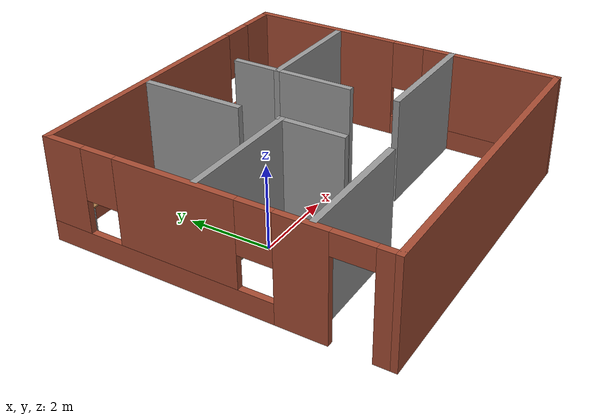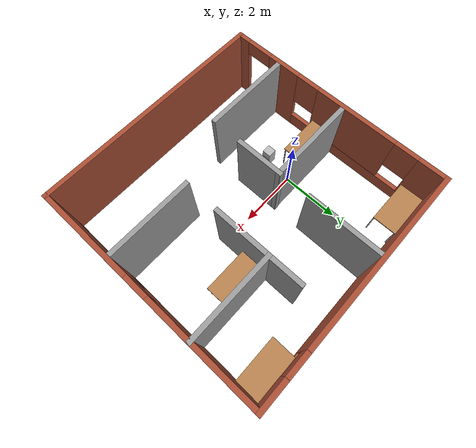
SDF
<?xml version="1.0" ?>
<sdf version="1.10">
    <world name="aruco_world">
        <physics name="1ms" type="ignored">
            <max_step_size>0.001</max_step_size>
            <real_time_factor>1.0</real_time_factor>
        </physics>
        <plugin
            filename="gz-sim-physics-system"
            name="gz::sim::systems::Physics">
        </plugin>
        <plugin
            filename="gz-sim-user-commands-system"
            name="gz::sim::systems::UserCommands">
        </plugin>
        <plugin
            filename="gz-sim-scene-broadcaster-system"
            name="gz::sim::systems::SceneBroadcaster">
        </plugin>

        <plugin
            filename="gz-sim-sensors-system"
            name="gz::sim::systems::Sensors">
            <render_engine>ogre2</render_engine>
        </plugin>

        <light type="directional" name="sun">
            <cast_shadows>false</cast_shadows>
            <pose>0 0 10 0 0 0</pose>
            <diffuse>0.8 0.8 0.8 1</diffuse>
            <specular>0.2 0.2 0.2 1</specular>
            <attenuation>
                <range>1000</range>
                <constant>0.9</constant>
                <linear>0.01</linear>
                <quadratic>0.001</quadratic>
            </attenuation>
            <direction>-0.5 0.1 -0.9</direction>
        </light>

        <include>
            <uri>model://aruco000_cv</uri>
            <pose>3 1 0.25 0 0 0</pose>
        </include>
        <include>
            <uri>model://box_brick</uri>
            <name>brick1</name>
            <pose>3.15 1 0 0 0 0</pose>
        </include>

        <include>
            <uri>model://aruco001_cv</uri>
            <pose>0 -1 0.25 0 0 3.1415</pose>
        </include>
        <include>
            <uri>model://box_brick</uri>
            <name>brick2</name>
            <pose>-0.15 -1 0 0 0 0</pose>
        </include>

        <include>
            <uri>/world_wall/model.sdf</uri>
            <pose>2 0 0 0 0 0</pose>
        </include>

    </world>
</sdf>

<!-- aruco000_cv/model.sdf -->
<sdf version='1.4'>
    <model name='aruco000_cv'>
    <static>true</static>

        <link name='link0'>
            <pose>0 0 0 0 0 3.1415</pose>

            <visual name='visual'>
                <geometry>
                    <mesh>
                        <uri>./meshes/aruco000.dae</uri>
                    </mesh>
                </geometry>
            </visual>

            <collision name='collision'>
                <pose>0 0 0 0 0 0</pose>
                <geometry>
                    <box>
                        <size>0.01 0.2 0.2</size>
                    </box>
                </geometry>
            </collision>

        </link>

    </model>

</sdf>

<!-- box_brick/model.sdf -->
<sdf version='1.4'>
    <model name='box_brick'>
    <static>true</static>

        <link name='link0'>
            <pose>0 0 0.3 0 0 0</pose>

            <visual name='visual'>
                <geometry>
                    <mesh>
                        <uri>./meshes/box_brick.dae</uri>
                    </mesh>
                </geometry>
            </visual>

            <collision name='collision'>
                <pose>0 0 0 0 0 0</pose>
                <geometry>
                    <box>
                        <size>0.3 0.3 0.6</size>
                    </box>
                </geometry>
            </collision>

        </link>

    </model>

</sdf>

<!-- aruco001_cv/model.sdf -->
<sdf version='1.4'>
    <model name='aruco001_cv'>
    <static>true</static>

        <link name='link0'>
            <pose>0 0 0 0 0 3.1415</pose>

            <visual name='visual'>
                <geometry>
                    <mesh>
                        <uri>./meshes/aruco001.dae</uri>
                    </mesh>
                </geometry>
            </visual>

            <collision name='collision'>
                <pose>0 0 0 0 0 0</pose>
                <geometry>
                    <box>
                        <size>0.01 0.25 0.25</size>
                    </box>
                </geometry>
            </collision>

        </link>

    </model>

</sdf>
